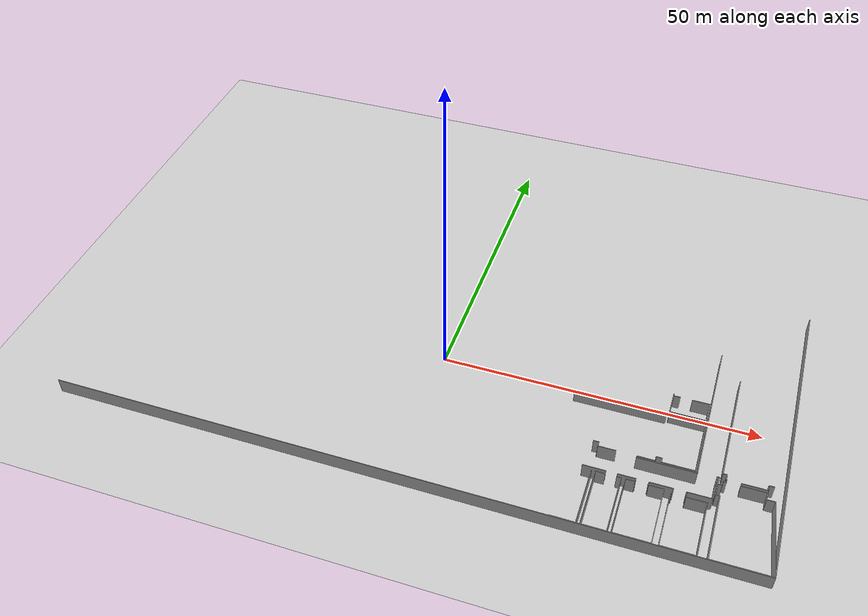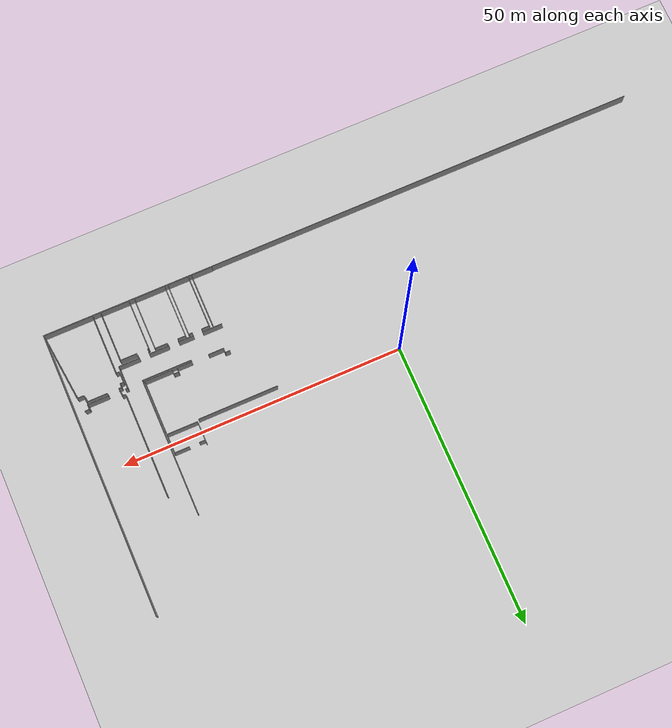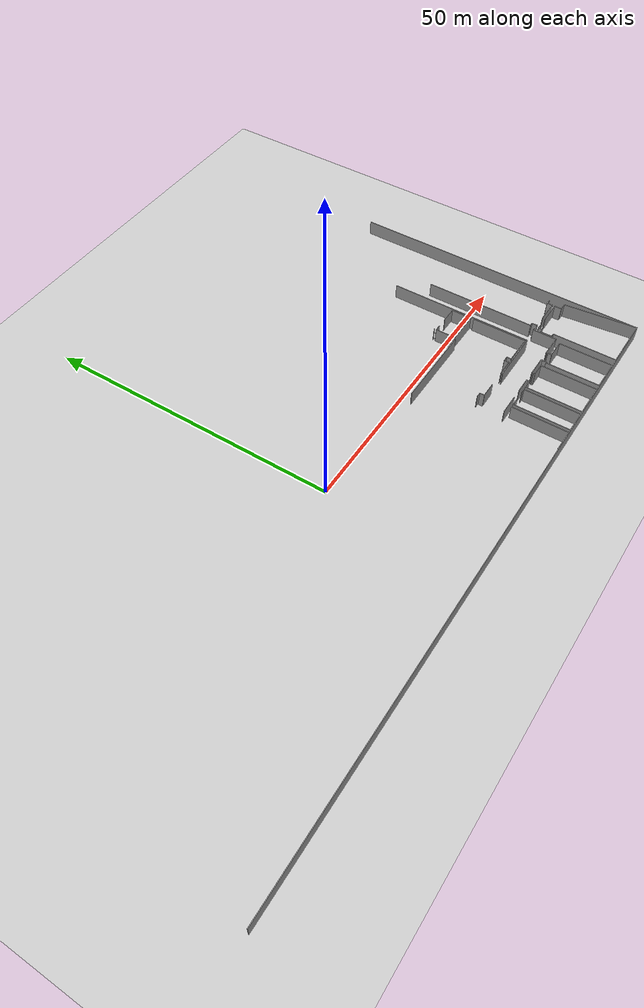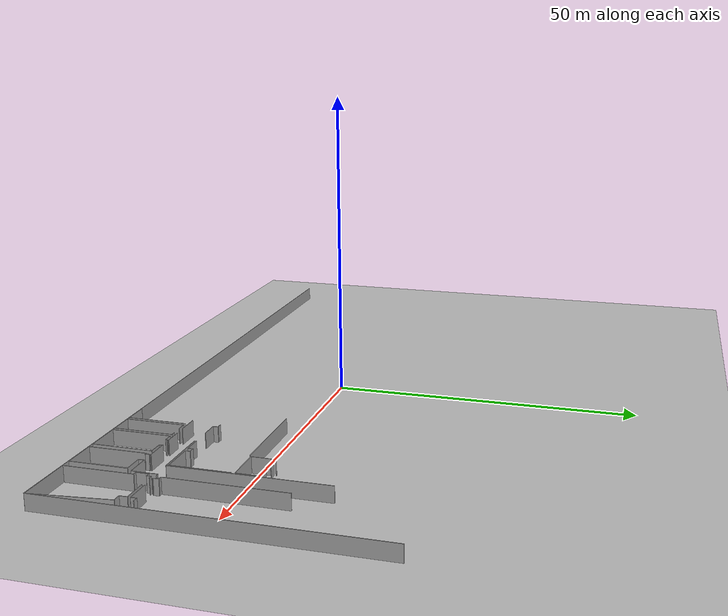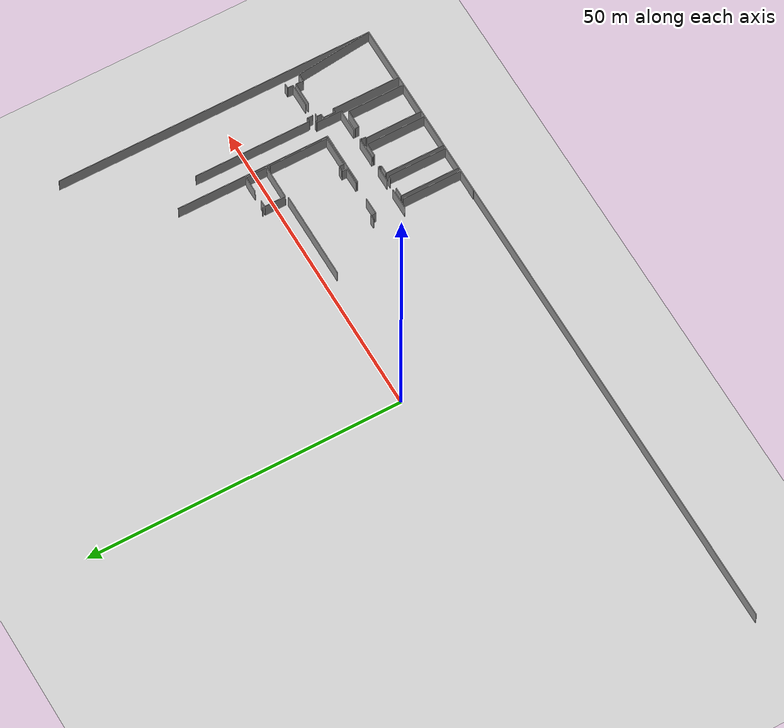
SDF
<sdf version="1.6">
 <world name="default">
  <model name="ground_plane">
   <static>1</static>
   <link name="link">
    <collision name="collision">
     <geometry><plane><normal>0 0 1</normal><size>100 100</size></plane></geometry>
     <surface><friction><ode><mu>100</mu><mu2>50</mu2></ode></friction></surface>
    </collision>
    <visual name="visual">
     <cast_shadows>0</cast_shadows>
     <geometry><plane><normal>0 0 1</normal><size>100 100</size></plane></geometry>
     <material>
      <script><uri>file://media/materials/scripts/gazebo.material</uri><name>Gazebo/Grey</name></script>
     </material>
    </visual>
   </link>
  </model>
  <model name="50045366">
   <static>1</static>
   <link name="Wall_234">
    <collision name="Wall_234_Collision">
     <geometry><box><size>8.78370654507 0.1 2.5</size></box></geometry>
     <pose>4.39185327254 0 1.25 0 0 0</pose>
    </collision>
    <visual name="Wall_234_Visual">
     <pose>4.39185327254 0 1.25 0 0 0</pose>
     <geometry><box><size>8.78370654507 0.1 2.5</size></box></geometry>
     <material>
      <script><uri>file://media/materials/scripts/gazebo.material</uri><name>Gazebo/Grey</name></script>
      <ambient>1 1 1 1</ambient>
     </material>
    </visual>
    <pose>87.0752308493 -36.9889878193 0 0 0 0.0</pose>
   </link>
   <link name="Wall_235">
    <collision name="Wall_235_Collision">
     <geometry><box><size>24.3527962302 0.1 2.5</size></box></geometry>
     <pose>12.1763981151 0 1.25 0 0 0</pose>
    </collision>
    <visual name="Wall_235_Visual">
     <pose>12.1763981151 0 1.25 0 0 0</pose>
     <geometry><box><size>24.3527962302 0.1 2.5</size></box></geometry>
     <material>
      <script><uri>file://media/materials/scripts/gazebo.material</uri><name>Gazebo/Grey</name></script>
      <ambient>1 1 1 1</ambient>
     </material>
    </visual>
    <pose>95.8589373944 -36.9889878193 0 0 0 1.57079632679</pose>
   </link>
   <link name="Wall_241">
    <collision name="Wall_241_Collision">
     <geometry><box><size>0.410003683428 0.1 2.5</size></box></geometry>
     <pose>0.205001841714 0 1.25 0 0 0</pose>
    </collision>
    <visual name="Wall_241_Visual">
     <pose>0.205001841714 0 1.25 0 0 0</pose>
     <geometry><box><size>0.410003683428 0.1 2.5</size></box></geometry>
     <material>
      <script><uri>file://media/materials/scripts/gazebo.material</uri><name>Gazebo/Grey</name></script>
      <ambient>1 1 1 1</ambient>
     </material>
    </visual>
    <pose>99.0200810354 -36.7453734869 0 0 0 3.14159265359</pose>
   </link>
   <link name="Wall_242">
    <collision name="Wall_242_Collision">
     <geometry><box><size>4.01684215874 0.1 2.5</size></box></geometry>
     <pose>2.00842107937 0 1.25 0 0 0</pose>
    </collision>
    <visual name="Wall_242_Visual">
     <pose>2.00842107937 0 1.25 0 0 0</pose>
     <geometry><box><size>4.01684215874 0.1 2.5</size></box></geometry>
     <material>
      <script><uri>file://media/materials/scripts/gazebo.material</uri><name>Gazebo/Grey</name></script>
      <ambient>1 1 1 1</ambient>
     </material>
    </visual>
    <pose>98.610077352 -36.7453734869 0 0 0 -1.57079632679</pose>
   </link>
   <link name="Wall_243">
    <collision name="Wall_243_Collision">
     <geometry><box><size>3.69485971218 0.1 2.5</size></box></geometry>
     <pose>1.84742985609 0 1.25 0 0 0</pose>
    </collision>
    <visual name="Wall_243_Visual">
     <pose>1.84742985609 0 1.25 0 0 0</pose>
     <geometry><box><size>3.69485971218 0.1 2.5</size></box></geometry>
     <material>
      <script><uri>file://media/materials/scripts/gazebo.material</uri><name>Gazebo/Grey</name></script>
      <ambient>1 1 1 1</ambient>
     </material>
    </visual>
    <pose>98.610077352 -40.7622156457 0 0 0 3.14159265359</pose>
   </link>
   <link name="Wall_244">
    <collision name="Wall_244_Collision">
     <geometry><box><size>3.50560770218 0.1 2.5</size></box></geometry>
     <pose>1.75280385109 0 1.25 0 0 0</pose>
    </collision>
    <visual name="Wall_244_Visual">
     <pose>1.75280385109 0 1.25 0 0 0</pose>
     <geometry><box><size>3.50560770218 0.1 2.5</size></box></geometry>
     <material>
      <script><uri>file://media/materials/scripts/gazebo.material</uri><name>Gazebo/Grey</name></script>
      <ambient>1 1 1 1</ambient>
     </material>
    </visual>
    <pose>93.1338354651 -40.7622156457 0 0 0 3.14159265359</pose>
   </link>
   <link name="Wall_245">
    <collision name="Wall_245_Collision">
     <geometry><box><size>2.70541463972 0.1 2.5</size></box></geometry>
     <pose>1.35270731986 0 1.25 0 0 0</pose>
    </collision>
    <visual name="Wall_245_Visual">
     <pose>1.35270731986 0 1.25 0 0 0</pose>
     <geometry><box><size>2.70541463972 0.1 2.5</size></box></geometry>
     <material>
      <script><uri>file://media/materials/scripts/gazebo.material</uri><name>Gazebo/Grey</name></script>
      <ambient>1 1 1 1</ambient>
     </material>
    </visual>
    <pose>87.8500209574 -40.7622156457 0 0 0 3.14159265359</pose>
   </link>
   <link name="Wall_246">
    <collision name="Wall_246_Collision">
     <geometry><box><size>3.48541235346 0.1 2.5</size></box></geometry>
     <pose>1.74270617673 0 1.25 0 0 0</pose>
    </collision>
    <visual name="Wall_246_Visual">
     <pose>1.74270617673 0 1.25 0 0 0</pose>
     <geometry><box><size>3.48541235346 0.1 2.5</size></box></geometry>
     <material>
      <script><uri>file://media/materials/scripts/gazebo.material</uri><name>Gazebo/Grey</name></script>
      <ambient>1 1 1 1</ambient>
     </material>
    </visual>
    <pose>83.5176741055 -40.7622156457 0 0 0 3.14159265359</pose>
   </link>
   <link name="Wall_339">
    <collision name="Wall_339_Collision">
     <geometry><box><size>9.46463273679 0.1 2.5</size></box></geometry>
     <pose>4.73231636839 0 1.25 0 0 0</pose>
    </collision>
    <visual name="Wall_339_Visual">
     <pose>4.73231636839 0 1.25 0 0 0</pose>
     <geometry><box><size>9.46463273679 0.1 2.5</size></box></geometry>
     <material>
      <script><uri>file://media/materials/scripts/gazebo.material</uri><name>Gazebo/Grey</name></script>
      <ambient>1 1 1 1</ambient>
     </material>
    </visual>
    <pose>81.4811192542 -41.2397911877 0 0 0 -1.57079632679</pose>
   </link>
   <link name="Wall_340">
    <collision name="Wall_340_Collision">
     <geometry><box><size>3.73577629962 0.1 2.5</size></box></geometry>
     <pose>1.86788814981 0 1.25 0 0 0</pose>
    </collision>
    <visual name="Wall_340_Visual">
     <pose>1.86788814981 0 1.25 0 0 0</pose>
     <geometry><box><size>3.73577629962 0.1 2.5</size></box></geometry>
     <material>
      <script><uri>file://media/materials/scripts/gazebo.material</uri><name>Gazebo/Grey</name></script>
      <ambient>1 1 1 1</ambient>
     </material>
    </visual>
    <pose>81.4811192542 -50.7044239245 0 0 0 3.13278665226</pose>
   </link>
   <link name="Wall_341">
    <collision name="Wall_341_Collision">
     <geometry><box><size>9.42373398026 0.1 2.5</size></box></geometry>
     <pose>4.71186699013 0 1.25 0 0 0</pose>
    </collision>
    <visual name="Wall_341_Visual">
     <pose>4.71186699013 0 1.25 0 0 0</pose>
     <geometry><box><size>9.42373398026 0.1 2.5</size></box></geometry>
     <material>
      <script><uri>file://media/materials/scripts/gazebo.material</uri><name>Gazebo/Grey</name></script>
      <ambient>1 1 1 1</ambient>
     </material>
    </visual>
    <pose>82.0553530376 -50.696930053 0 0 0 1.57079632679</pose>
   </link>
   <link name="Wall_342">
    <collision name="Wall_342_Collision">
     <geometry><box><size>1.44352288171 0.1 2.5</size></box></geometry>
     <pose>0.721761440856 0 1.25 0 0 0</pose>
    </collision>
    <visual name="Wall_342_Visual">
     <pose>0.721761440856 0 1.25 0 0 0</pose>
     <geometry><box><size>1.44352288171 0.1 2.5</size></box></geometry>
     <material>
      <script><uri>file://media/materials/scripts/gazebo.material</uri><name>Gazebo/Grey</name></script>
      <ambient>1 1 1 1</ambient>
     </material>
    </visual>
    <pose>82.0553530376 -41.2731960727 0 0 0 0.0</pose>
   </link>
   <link name="Wall_343">
    <collision name="Wall_343_Collision">
     <geometry><box><size>0.672289187232 0.1 2.5</size></box></geometry>
     <pose>0.336144593616 0 1.25 0 0 0</pose>
    </collision>
    <visual name="Wall_343_Visual">
     <pose>0.336144593616 0 1.25 0 0 0</pose>
     <geometry><box><size>0.672289187232 0.1 2.5</size></box></geometry>
     <material>
      <script><uri>file://media/materials/scripts/gazebo.material</uri><name>Gazebo/Grey</name></script>
      <ambient>1 1 1 1</ambient>
     </material>
    </visual>
    <pose>85.1214896292 -41.2731960727 0 0 0 0.0</pose>
   </link>
   <link name="Wall_344">
    <collision name="Wall_344_Collision">
     <geometry><box><size>9.4271633791 0.1 2.5</size></box></geometry>
     <pose>4.71358168955 0 1.25 0 0 0</pose>
    </collision>
    <visual name="Wall_344_Visual">
     <pose>4.71358168955 0 1.25 0 0 0</pose>
     <geometry><box><size>9.4271633791 0.1 2.5</size></box></geometry>
     <material>
      <script><uri>file://media/materials/scripts/gazebo.material</uri><name>Gazebo/Grey</name></script>
      <ambient>1 1 1 1</ambient>
     </material>
    </visual>
    <pose>85.7937788165 -41.2731960727 0 0 0 -1.57079632679</pose>
   </link>
   <link name="Wall_345">
    <collision name="Wall_345_Collision">
     <geometry><box><size>3.73842735188 0.1 2.5</size></box></geometry>
     <pose>1.86921367594 0 1.25 0 0 0</pose>
    </collision>
    <visual name="Wall_345_Visual">
     <pose>1.86921367594 0 1.25 0 0 0</pose>
     <geometry><box><size>3.73842735188 0.1 2.5</size></box></geometry>
     <material>
      <script><uri>file://media/materials/scripts/gazebo.material</uri><name>Gazebo/Grey</name></script>
      <ambient>1 1 1 1</ambient>
     </material>
    </visual>
    <pose>85.7937788165 -50.7003594518 0 0 0 3.14067531616</pose>
   </link>
   <link name="Wall_346">
    <collision name="Wall_346_Collision">
     <geometry><box><size>9.43224396997 0.1 2.5</size></box></geometry>
     <pose>4.71612198499 0 1.25 0 0 0</pose>
    </collision>
    <visual name="Wall_346_Visual">
     <pose>4.71612198499 0 1.25 0 0 0</pose>
     <geometry><box><size>9.43224396997 0.1 2.5</size></box></geometry>
     <material>
      <script><uri>file://media/materials/scripts/gazebo.material</uri><name>Gazebo/Grey</name></script>
      <ambient>1 1 1 1</ambient>
     </material>
    </visual>
    <pose>86.3700448362 -50.6907063291 0 0 0 1.57079632679</pose>
   </link>
   <link name="Wall_347">
    <collision name="Wall_347_Collision">
     <geometry><box><size>1.40249711041 0.1 2.5</size></box></geometry>
     <pose>0.701248555207 0 1.25 0 0 0</pose>
    </collision>
    <visual name="Wall_347_Visual">
     <pose>0.701248555207 0 1.25 0 0 0</pose>
     <geometry><box><size>1.40249711041 0.1 2.5</size></box></geometry>
     <material>
      <script><uri>file://media/materials/scripts/gazebo.material</uri><name>Gazebo/Grey</name></script>
      <ambient>1 1 1 1</ambient>
     </material>
    </visual>
    <pose>86.3700448362 -41.2584623592 0 0 0 0.0</pose>
   </link>
   <link name="Wall_348">
    <collision name="Wall_348_Collision">
     <geometry><box><size>0.258094016334 0.1 2.5</size></box></geometry>
     <pose>0.129047008167 0 1.25 0 0 0</pose>
    </collision>
    <visual name="Wall_348_Visual">
     <pose>0.129047008167 0 1.25 0 0 0</pose>
     <geometry><box><size>0.258094016334 0.1 2.5</size></box></geometry>
     <material>
      <script><uri>file://media/materials/scripts/gazebo.material</uri><name>Gazebo/Grey</name></script>
      <ambient>1 1 1 1</ambient>
     </material>
    </visual>
    <pose>87.7725419466 -41.2584623592 0 0 0 1.57079632679</pose>
   </link>
   <link name="Wall_349">
    <collision name="Wall_349_Collision">
     <geometry><box><size>0.0933558572862 0.1 2.5</size></box></geometry>
     <pose>0.0466779286431 0 1.25 0 0 0</pose>
    </collision>
    <visual name="Wall_349_Visual">
     <pose>0.0466779286431 0 1.25 0 0 0</pose>
     <geometry><box><size>0.0933558572862 0.1 2.5</size></box></geometry>
     <material>
      <script><uri>file://media/materials/scripts/gazebo.material</uri><name>Gazebo/Grey</name></script>
      <ambient>1 1 1 1</ambient>
     </material>
    </visual>
    <pose>87.7725419466 -41.0003683428 0 0 0 0.0</pose>
   </link>
   <link name="Wall_350">
    <collision name="Wall_350_Collision">
     <geometry><box><size>0.126379697959 0.1 2.5</size></box></geometry>
     <pose>0.0631898489794 0 1.25 0 0 0</pose>
    </collision>
    <visual name="Wall_350_Visual">
     <pose>0.0631898489794 0 1.25 0 0 0</pose>
     <geometry><box><size>0.126379697959 0.1 2.5</size></box></geometry>
     <material>
      <script><uri>file://media/materials/scripts/gazebo.material</uri><name>Gazebo/Grey</name></script>
      <ambient>1 1 1 1</ambient>
     </material>
    </visual>
    <pose>89.5875830359 -41.0003683428 0 0 0 0.0</pose>
   </link>
   <link name="Wall_351">
    <collision name="Wall_351_Collision">
     <geometry><box><size>0.263301621979 0.1 2.5</size></box></geometry>
     <pose>0.131650810989 0 1.25 0 0 0</pose>
    </collision>
    <visual name="Wall_351_Visual">
     <pose>0.131650810989 0 1.25 0 0 0</pose>
     <geometry><box><size>0.263301621979 0.1 2.5</size></box></geometry>
     <material>
      <script><uri>file://media/materials/scripts/gazebo.material</uri><name>Gazebo/Grey</name></script>
      <ambient>1 1 1 1</ambient>
     </material>
    </visual>
    <pose>89.7139627339 -41.0003683428 0 0 0 -1.57079632679</pose>
   </link>
   <link name="Wall_352">
    <collision name="Wall_352_Collision">
     <geometry><box><size>2.18490810481 0.1 2.5</size></box></geometry>
     <pose>1.09245405241 0 1.25 0 0 0</pose>
    </collision>
    <visual name="Wall_352_Visual">
     <pose>1.09245405241 0 1.25 0 0 0</pose>
     <geometry><box><size>2.18490810481 0.1 2.5</size></box></geometry>
     <material>
      <script><uri>file://media/materials/scripts/gazebo.material</uri><name>Gazebo/Grey</name></script>
      <ambient>1 1 1 1</ambient>
     </material>
    </visual>
    <pose>89.7139627339 -41.2636699648 0 0 0 0.0</pose>
   </link>
   <link name="Wall_353">
    <collision name="Wall_353_Collision">
     <geometry><box><size>9.4230989064 0.1 2.5</size></box></geometry>
     <pose>4.7115494532 0 1.25 0 0 0</pose>
    </collision>
    <visual name="Wall_353_Visual">
     <pose>4.7115494532 0 1.25 0 0 0</pose>
     <geometry><box><size>9.4230989064 0.1 2.5</size></box></geometry>
     <material>
      <script><uri>file://media/materials/scripts/gazebo.material</uri><name>Gazebo/Grey</name></script>
      <ambient>1 1 1 1</ambient>
     </material>
    </visual>
    <pose>91.8988708387 -41.2636699648 0 0 0 -1.57079632679</pose>
   </link>
   <link name="Wall_354">
    <collision name="Wall_354_Collision">
     <geometry><box><size>5.52882740453 0.1 2.5</size></box></geometry>
     <pose>2.76441370227 0 1.25 0 0 0</pose>
    </collision>
    <visual name="Wall_354_Visual">
     <pose>2.76441370227 0 1.25 0 0 0</pose>
     <geometry><box><size>5.52882740453 0.1 2.5</size></box></geometry>
     <material>
      <script><uri>file://media/materials/scripts/gazebo.material</uri><name>Gazebo/Grey</name></script>
      <ambient>1 1 1 1</ambient>
     </material>
    </visual>
    <pose>91.8988708387 -50.6867688712 0 0 0 -3.14088048481</pose>
   </link>
   <link name="Wall_355">
    <collision name="Wall_355_Collision">
     <geometry><box><size>9.00674448438 0.1 2.5</size></box></geometry>
     <pose>4.50337224219 0 1.25 0 0 0</pose>
    </collision>
    <visual name="Wall_355_Visual">
     <pose>4.50337224219 0 1.25 0 0 0</pose>
     <geometry><box><size>9.00674448438 0.1 2.5</size></box></geometry>
     <material>
      <script><uri>file://media/materials/scripts/gazebo.material</uri><name>Gazebo/Grey</name></script>
      <ambient>1 1 1 1</ambient>
     </material>
    </visual>
    <pose>92.8682475772 -50.6748294827 0 0 0 1.57079632679</pose>
   </link>
   <link name="Wall_356">
    <collision name="Wall_356_Collision">
     <geometry><box><size>0.175788444196 0.1 2.5</size></box></geometry>
     <pose>0.087894222098 0 1.25 0 0 0</pose>
    </collision>
    <visual name="Wall_356_Visual">
     <pose>0.087894222098 0 1.25 0 0 0</pose>
     <geometry><box><size>0.175788444196 0.1 2.5</size></box></geometry>
     <material>
      <script><uri>file://media/materials/scripts/gazebo.material</uri><name>Gazebo/Grey</name></script>
      <ambient>1 1 1 1</ambient>
     </material>
    </visual>
    <pose>92.8682475772 -41.6680849983 0 0 0 0.0</pose>
   </link>
   <link name="Wall_357">
    <collision name="Wall_357_Collision">
     <geometry><box><size>0.682831413293 0.1 2.5</size></box></geometry>
     <pose>0.341415706647 0 1.25 0 0 0</pose>
    </collision>
    <visual name="Wall_357_Visual">
     <pose>0.341415706647 0 1.25 0 0 0</pose>
     <geometry><box><size>0.682831413293 0.1 2.5</size></box></geometry>
     <material>
      <script><uri>file://media/materials/scripts/gazebo.material</uri><name>Gazebo/Grey</name></script>
      <ambient>1 1 1 1</ambient>
     </material>
    </visual>
    <pose>93.0440360214 -41.6680849983 0 0 0 1.57079632679</pose>
   </link>
   <link name="Wall_358">
    <collision name="Wall_358_Collision">
     <geometry><box><size>0.119393885509 0.1 2.5</size></box></geometry>
     <pose>0.0596969427544 0 1.25 0 0 0</pose>
    </collision>
    <visual name="Wall_358_Visual">
     <pose>0.0596969427544 0 1.25 0 0 0</pose>
     <geometry><box><size>0.119393885509 0.1 2.5</size></box></geometry>
     <material>
      <script><uri>file://media/materials/scripts/gazebo.material</uri><name>Gazebo/Grey</name></script>
      <ambient>1 1 1 1</ambient>
     </material>
    </visual>
    <pose>93.0440360214 -40.985253585 0 0 0 0.0</pose>
   </link>
   <link name="Wall_359">
    <collision name="Wall_359_Collision">
     <geometry><box><size>0.116218516213 0.1 2.5</size></box></geometry>
     <pose>0.0581092581067 0 1.25 0 0 0</pose>
    </collision>
    <visual name="Wall_359_Visual">
     <pose>0.0581092581067 0 1.25 0 0 0</pose>
     <geometry><box><size>0.116218516213 0.1 2.5</size></box></geometry>
     <material>
      <script><uri>file://media/materials/scripts/gazebo.material</uri><name>Gazebo/Grey</name></script>
      <ambient>1 1 1 1</ambient>
     </material>
    </visual>
    <pose>94.8978166161 -40.985253585 0 0 0 0.0</pose>
   </link>
   <link name="Wall_360">
    <collision name="Wall_360_Collision">
     <geometry><box><size>0.674321423582 0.1 2.5</size></box></geometry>
     <pose>0.337160711791 0 1.25 0 0 0</pose>
    </collision>
    <visual name="Wall_360_Visual">
     <pose>0.337160711791 0 1.25 0 0 0</pose>
     <geometry><box><size>0.674321423582 0.1 2.5</size></box></geometry>
     <material>
      <script><uri>file://media/materials/scripts/gazebo.material</uri><name>Gazebo/Grey</name></script>
      <ambient>1 1 1 1</ambient>
     </material>
    </visual>
    <pose>95.0140351323 -40.985253585 0 0 0 -1.57079632679</pose>
   </link>
   <link name="Wall_361">
    <collision name="Wall_361_Collision">
     <geometry><box><size>2.99195996494 0.1 2.5</size></box></geometry>
     <pose>1.49597998247 0 1.25 0 0 0</pose>
    </collision>
    <visual name="Wall_361_Visual">
     <pose>1.49597998247 0 1.25 0 0 0</pose>
     <geometry><box><size>2.99195996494 0.1 2.5</size></box></geometry>
     <material>
      <script><uri>file://media/materials/scripts/gazebo.material</uri><name>Gazebo/Grey</name></script>
      <ambient>1 1 1 1</ambient>
     </material>
    </visual>
    <pose>95.0140351323 -41.6595750086 0 0 0 0.0</pose>
   </link>
   <link name="Wall_362">
    <collision name="Wall_362_Collision">
     <geometry><box><size>9.03113132057 0.1 2.5</size></box></geometry>
     <pose>4.51556566029 0 1.25 0 0 0</pose>
    </collision>
    <visual name="Wall_362_Visual">
     <pose>4.51556566029 0 1.25 0 0 0</pose>
     <geometry><box><size>9.03113132057 0.1 2.5</size></box></geometry>
     <material>
      <script><uri>file://media/materials/scripts/gazebo.material</uri><name>Gazebo/Grey</name></script>
      <ambient>1 1 1 1</ambient>
     </material>
    </visual>
    <pose>98.0059950972 -41.6595750086 0 0 0 -1.57079632679</pose>
   </link>
   <link name="Wall_363">
    <collision name="Wall_363_Collision">
     <geometry><box><size>5.13777205157 0.1 2.5</size></box></geometry>
     <pose>2.56888602579 0 1.25 0 0 0</pose>
    </collision>
    <visual name="Wall_363_Visual">
     <pose>2.56888602579 0 1.25 0 0 0</pose>
     <geometry><box><size>5.13777205157 0.1 2.5</size></box></geometry>
     <material>
      <script><uri>file://media/materials/scripts/gazebo.material</uri><name>Gazebo/Grey</name></script>
      <ambient>1 1 1 1</ambient>
     </material>
    </visual>
    <pose>98.0059950972 -50.6907063291 0 0 0 3.13850242857</pose>
   </link>
   <link name="Wall_366">
    <collision name="Wall_366_Collision">
     <geometry><box><size>9.25721761441 0.1 2.5</size></box></geometry>
     <pose>4.6286088072 0 1.25 0 0 0</pose>
    </collision>
    <visual name="Wall_366_Visual">
     <pose>4.6286088072 0 1.25 0 0 0</pose>
     <geometry><box><size>9.25721761441 0.1 2.5</size></box></geometry>
     <material>
      <script><uri>file://media/materials/scripts/gazebo.material</uri><name>Gazebo/Grey</name></script>
      <ambient>1 1 1 1</ambient>
     </material>
    </visual>
    <pose>95.6183714166 -27.4477651751 0 0 0 -1.57079632679</pose>
   </link>
   <link name="Wall_367">
    <collision name="Wall_367_Collision">
     <geometry><box><size>4.9707230951 0.1 2.5</size></box></geometry>
     <pose>2.48536154755 0 1.25 0 0 0</pose>
    </collision>
    <visual name="Wall_367_Visual">
     <pose>2.48536154755 0 1.25 0 0 0</pose>
     <geometry><box><size>4.9707230951 0.1 2.5</size></box></geometry>
     <material>
      <script><uri>file://media/materials/scripts/gazebo.material</uri><name>Gazebo/Grey</name></script>
      <ambient>1 1 1 1</ambient>
     </material>
    </visual>
    <pose>95.6183714166 -36.7049827895 0 0 0 3.14159265359</pose>
   </link>
   <link name="Wall_368">
    <collision name="Wall_368_Collision">
     <geometry><box><size>0.759929379787 0.1 2.5</size></box></geometry>
     <pose>0.379964689893 0 1.25 0 0 0</pose>
    </collision>
    <visual name="Wall_368_Visual">
     <pose>0.379964689893 0 1.25 0 0 0</pose>
     <geometry><box><size>0.759929379787 0.1 2.5</size></box></geometry>
     <material>
      <script><uri>file://media/materials/scripts/gazebo.material</uri><name>Gazebo/Grey</name></script>
      <ambient>1 1 1 1</ambient>
     </material>
    </visual>
    <pose>90.6476483215 -36.7049827895 0 0 0 1.57079632679</pose>
   </link>
   <link name="Wall_369">
    <collision name="Wall_369_Collision">
     <geometry><box><size>0.876909984631 0.1 2.5</size></box></geometry>
     <pose>0.438454992316 0 1.25 0 0 0</pose>
    </collision>
    <visual name="Wall_369_Visual">
     <pose>0.438454992316 0 1.25 0 0 0</pose>
     <geometry><box><size>0.876909984631 0.1 2.5</size></box></geometry>
     <material>
      <script><uri>file://media/materials/scripts/gazebo.material</uri><name>Gazebo/Grey</name></script>
      <ambient>1 1 1 1</ambient>
     </material>
    </visual>
    <pose>90.6476483215 -35.9450534097 0 0 0 3.14159265359</pose>
   </link>
   <link name="Wall_370">
    <collision name="Wall_370_Collision">
     <geometry><box><size>0.776695329667 0.1 2.5</size></box></geometry>
     <pose>0.388347664833 0 1.25 0 0 0</pose>
    </collision>
    <visual name="Wall_370_Visual">
     <pose>0.388347664833 0 1.25 0 0 0</pose>
     <geometry><box><size>0.776695329667 0.1 2.5</size></box></geometry>
     <material>
      <script><uri>file://media/materials/scripts/gazebo.material</uri><name>Gazebo/Grey</name></script>
      <ambient>1 1 1 1</ambient>
     </material>
    </visual>
    <pose>89.7707383369 -35.9450534097 0 0 0 -1.57079632679</pose>
   </link>
   <link name="Wall_371">
    <collision name="Wall_371_Collision">
     <geometry><box><size>2.68077377399 0.1 2.5</size></box></geometry>
     <pose>1.34038688699 0 1.25 0 0 0</pose>
    </collision>
    <visual name="Wall_371_Visual">
     <pose>1.34038688699 0 1.25 0 0 0</pose>
     <geometry><box><size>2.68077377399 0.1 2.5</size></box></geometry>
     <material>
      <script><uri>file://media/materials/scripts/gazebo.material</uri><name>Gazebo/Grey</name></script>
      <ambient>1 1 1 1</ambient>
     </material>
    </visual>
    <pose>89.7707383369 -36.7217487394 0 0 0 3.14159265359</pose>
   </link>
   <link name="Wall_372">
    <collision name="Wall_372_Collision">
     <geometry><box><size>2.71798910213 0.1 2.5</size></box></geometry>
     <pose>1.35899455107 0 1.25 0 0 0</pose>
    </collision>
    <visual name="Wall_372_Visual">
     <pose>1.35899455107 0 1.25 0 0 0</pose>
     <geometry><box><size>2.71798910213 0.1 2.5</size></box></geometry>
     <material>
      <script><uri>file://media/materials/scripts/gazebo.material</uri><name>Gazebo/Grey</name></script>
      <ambient>1 1 1 1</ambient>
     </material>
    </visual>
    <pose>84.1034662331 -36.7217487394 0 0 0 3.14159265359</pose>
   </link>
   <link name="Wall_373">
    <collision name="Wall_373_Collision">
     <geometry><box><size>0.783046068258 0.1 2.5</size></box></geometry>
     <pose>0.391523034129 0 1.25 0 0 0</pose>
    </collision>
    <visual name="Wall_373_Visual">
     <pose>0.391523034129 0 1.25 0 0 0</pose>
     <geometry><box><size>0.783046068258 0.1 2.5</size></box></geometry>
     <material>
      <script><uri>file://media/materials/scripts/gazebo.material</uri><name>Gazebo/Grey</name></script>
      <ambient>1 1 1 1</ambient>
     </material>
    </visual>
    <pose>81.385477131 -36.7217487394 0 0 0 1.57079632679</pose>
   </link>
   <link name="Wall_374">
    <collision name="Wall_374_Collision">
     <geometry><box><size>0.845156291677 0.1 2.5</size></box></geometry>
     <pose>0.422578145838 0 1.25 0 0 0</pose>
    </collision>
    <visual name="Wall_374_Visual">
     <pose>0.422578145838 0 1.25 0 0 0</pose>
     <geometry><box><size>0.845156291677 0.1 2.5</size></box></geometry>
     <material>
      <script><uri>file://media/materials/scripts/gazebo.material</uri><name>Gazebo/Grey</name></script>
      <ambient>1 1 1 1</ambient>
     </material>
    </visual>
    <pose>81.385477131 -35.9387026711 0 0 0 3.14159265359</pose>
   </link>
   <link name="Wall_394">
    <collision name="Wall_394_Collision">
     <geometry><box><size>0.864335522221 0.1 2.5</size></box></geometry>
     <pose>0.432167761111 0 1.25 0 0 0</pose>
    </collision>
    <visual name="Wall_394_Visual">
     <pose>0.432167761111 0 1.25 0 0 0</pose>
     <geometry><box><size>0.864335522221 0.1 2.5</size></box></geometry>
     <material>
      <script><uri>file://media/materials/scripts/gazebo.material</uri><name>Gazebo/Grey</name></script>
      <ambient>1 1 1 1</ambient>
     </material>
    </visual>
    <pose>99.9023256405 -36.7935120855 0 0 0 1.57079632679</pose>
   </link>
   <link name="Wall_395">
    <collision name="Wall_395_Collision">
     <geometry><box><size>0.576266019738 0.1 2.5</size></box></geometry>
     <pose>0.288133009869 0 1.25 0 0 0</pose>
    </collision>
    <visual name="Wall_395_Visual">
     <pose>0.288133009869 0 1.25 0 0 0</pose>
     <geometry><box><size>0.576266019738 0.1 2.5</size></box></geometry>
     <material>
      <script><uri>file://media/materials/scripts/gazebo.material</uri><name>Gazebo/Grey</name></script>
      <ambient>1 1 1 1</ambient>
     </material>
    </visual>
    <pose>99.9023256405 -35.9291765632 0 0 0 3.14159265359</pose>
   </link>
   <link name="Wall_396">
    <collision name="Wall_396_Collision">
     <geometry><box><size>18.5674003887 0.1 2.5</size></box></geometry>
     <pose>9.28370019433 0 1.25 0 0 0</pose>
    </collision>
    <visual name="Wall_396_Visual">
     <pose>9.28370019433 0 1.25 0 0 0</pose>
     <geometry><box><size>18.5674003887 0.1 2.5</size></box></geometry>
     <material>
      <script><uri>file://media/materials/scripts/gazebo.material</uri><name>Gazebo/Grey</name></script>
      <ambient>1 1 1 1</ambient>
     </material>
    </visual>
    <pose>99.3260596207 -35.9291765632 0 0 0 1.57079632679</pose>
   </link>
   <link name="Wall_401">
    <collision name="Wall_401_Collision">
     <geometry><box><size>0.806543801044 0.1 2.5</size></box></geometry>
     <pose>0.403271900522 0 1.25 0 0 0</pose>
    </collision>
    <visual name="Wall_401_Visual">
     <pose>0.403271900522 0 1.25 0 0 0</pose>
     <geometry><box><size>0.806543801044 0.1 2.5</size></box></geometry>
     <material>
      <script><uri>file://media/materials/scripts/gazebo.material</uri><name>Gazebo/Grey</name></script>
      <ambient>1 1 1 1</ambient>
     </material>
    </visual>
    <pose>106.532623744 -35.9442913211 0 0 0 3.14159265359</pose>
   </link>
   <link name="Wall_402">
    <collision name="Wall_402_Collision">
     <geometry><box><size>0.88592803343 0.1 2.5</size></box></geometry>
     <pose>0.442964016715 0 1.25 0 0 0</pose>
    </collision>
    <visual name="Wall_402_Visual">
     <pose>0.442964016715 0 1.25 0 0 0</pose>
     <geometry><box><size>0.88592803343 0.1 2.5</size></box></geometry>
     <material>
      <script><uri>file://media/materials/scripts/gazebo.material</uri><name>Gazebo/Grey</name></script>
      <ambient>1 1 1 1</ambient>
     </material>
    </visual>
    <pose>105.726079943 -35.9442913211 0 0 0 -1.57079632679</pose>
   </link>
   <link name="Wall_403">
    <collision name="Wall_403_Collision">
     <geometry><box><size>3.73321817327 0.1 2.5</size></box></geometry>
     <pose>1.86660908664 0 1.25 0 0 0</pose>
    </collision>
    <visual name="Wall_403_Visual">
     <pose>1.86660908664 0 1.25 0 0 0</pose>
     <geometry><box><size>3.73321817327 0.1 2.5</size></box></geometry>
     <material>
      <script><uri>file://media/materials/scripts/gazebo.material</uri><name>Gazebo/Grey</name></script>
      <ambient>1 1 1 1</ambient>
     </material>
    </visual>
    <pose>105.726079943 -36.8302193545 0 0 0 3.14159265359</pose>
   </link>
   <link name="Wall_404">
    <collision name="Wall_404_Collision">
     <geometry><box><size>0.12916509288 0.1 2.5</size></box></geometry>
     <pose>0.0645825464399 0 1.25 0 0 0</pose>
    </collision>
    <visual name="Wall_404_Visual">
     <pose>0.0645825464399 0 1.25 0 0 0</pose>
     <geometry><box><size>0.12916509288 0.1 2.5</size></box></geometry>
     <material>
      <script><uri>file://media/materials/scripts/gazebo.material</uri><name>Gazebo/Grey</name></script>
      <ambient>1 1 1 1</ambient>
     </material>
    </visual>
    <pose>100.026165043 -36.8302193545 0 0 0 2.85343244696</pose>
   </link>
   <link name="Wall_405">
    <collision name="Wall_405_Collision">
     <geometry><box><size>10.796001575 0.1 2.5</size></box></geometry>
     <pose>5.39800078749 0 1.25 0 0 0</pose>
    </collision>
    <visual name="Wall_405_Visual">
     <pose>5.39800078749 0 1.25 0 0 0</pose>
     <geometry><box><size>10.796001575 0.1 2.5</size></box></geometry>
     <material>
      <script><uri>file://media/materials/scripts/gazebo.material</uri><name>Gazebo/Grey</name></script>
      <ambient>1 1 1 1</ambient>
     </material>
    </visual>
    <pose>99.4619654266 -50.7079803381 0 0 0 1.57079632679</pose>
   </link>
   <link name="Wall_406">
    <collision name="Wall_406_Collision">
     <geometry><box><size>0.613227318337 0.1 2.5</size></box></geometry>
     <pose>0.306613659169 0 1.25 0 0 0</pose>
    </collision>
    <visual name="Wall_406_Visual">
     <pose>0.306613659169 0 1.25 0 0 0</pose>
     <geometry><box><size>0.613227318337 0.1 2.5</size></box></geometry>
     <material>
      <script><uri>file://media/materials/scripts/gazebo.material</uri><name>Gazebo/Grey</name></script>
      <ambient>1 1 1 1</ambient>
     </material>
    </visual>
    <pose>99.4619654266 -39.9119787631 0 0 0 3.14159265359</pose>
   </link>
   <link name="Wall_407">
    <collision name="Wall_407_Collision">
     <geometry><box><size>1.93761034408 0.1 2.5</size></box></geometry>
     <pose>0.968805172042 0 1.25 0 0 0</pose>
    </collision>
    <visual name="Wall_407_Visual">
     <pose>0.968805172042 0 1.25 0 0 0</pose>
     <geometry><box><size>1.93761034408 0.1 2.5</size></box></geometry>
     <material>
      <script><uri>file://media/materials/scripts/gazebo.material</uri><name>Gazebo/Grey</name></script>
      <ambient>1 1 1 1</ambient>
     </material>
    </visual>
    <pose>98.8487381082 -39.9119787631 0 0 0 1.57079632679</pose>
   </link>
   <link name="Wall_408">
    <collision name="Wall_408_Collision">
     <geometry><box><size>0.626309839834 0.1 2.5</size></box></geometry>
     <pose>0.313154919917 0 1.25 0 0 0</pose>
    </collision>
    <visual name="Wall_408_Visual">
     <pose>0.313154919917 0 1.25 0 0 0</pose>
     <geometry><box><size>0.626309839834 0.1 2.5</size></box></geometry>
     <material>
      <script><uri>file://media/materials/scripts/gazebo.material</uri><name>Gazebo/Grey</name></script>
      <ambient>1 1 1 1</ambient>
     </material>
    </visual>
    <pose>98.8487381082 -37.974368419 0 0 0 0.0</pose>
   </link>
   <link name="Wall_409">
    <collision name="Wall_409_Collision">
     <geometry><box><size>0.701502584751 0.1 2.5</size></box></geometry>
     <pose>0.350751292375 0 1.25 0 0 0</pose>
    </collision>
    <visual name="Wall_409_Visual">
     <pose>0.350751292375 0 1.25 0 0 0</pose>
     <geometry><box><size>0.701502584751 0.1 2.5</size></box></geometry>
     <material>
      <script><uri>file://media/materials/scripts/gazebo.material</uri><name>Gazebo/Grey</name></script>
      <ambient>1 1 1 1</ambient>
     </material>
    </visual>
    <pose>99.4750479481 -37.974368419 0 0 0 1.57079632679</pose>
   </link>
   <link name="Wall_410">
    <collision name="Wall_410_Collision">
     <geometry><box><size>0.526222199642 0.1 2.5</size></box></geometry>
     <pose>0.263111099821 0 1.25 0 0 0</pose>
    </collision>
    <visual name="Wall_410_Visual">
     <pose>0.263111099821 0 1.25 0 0 0</pose>
     <geometry><box><size>0.526222199642 0.1 2.5</size></box></geometry>
     <material>
      <script><uri>file://media/materials/scripts/gazebo.material</uri><name>Gazebo/Grey</name></script>
      <ambient>1 1 1 1</ambient>
     </material>
    </visual>
    <pose>99.4750479481 -37.2728658343 0 0 0 0.0</pose>
   </link>
   <link name="Wall_411">
    <collision name="Wall_411_Collision">
     <geometry><box><size>3.71073655866 0.1 2.5</size></box></geometry>
     <pose>1.85536827933 0 1.25 0 0 0</pose>
    </collision>
    <visual name="Wall_411_Visual">
     <pose>1.85536827933 0 1.25 0 0 0</pose>
     <geometry><box><size>3.71073655866 0.1 2.5</size></box></geometry>
     <material>
      <script><uri>file://media/materials/scripts/gazebo.material</uri><name>Gazebo/Grey</name></script>
      <ambient>1 1 1 1</ambient>
     </material>
    </visual>
    <pose>101.991210578 -37.2728658343 0 0 0 0.0</pose>
   </link>
   <link name="Wall_412">
    <collision name="Wall_412_Collision">
     <geometry><box><size>1.20854555385 0.1 2.5</size></box></geometry>
     <pose>0.604272776924 0 1.25 0 0 0</pose>
    </collision>
    <visual name="Wall_412_Visual">
     <pose>0.604272776924 0 1.25 0 0 0</pose>
     <geometry><box><size>1.20854555385 0.1 2.5</size></box></geometry>
     <material>
      <script><uri>file://media/materials/scripts/gazebo.material</uri><name>Gazebo/Grey</name></script>
      <ambient>1 1 1 1</ambient>
     </material>
    </visual>
    <pose>105.701947136 -37.2728658343 0 0 0 -1.57079632679</pose>
   </link>
   <link name="Wall_413">
    <collision name="Wall_413_Collision">
     <geometry><box><size>1.2155313663 0.1 2.5</size></box></geometry>
     <pose>0.607765683149 0 1.25 0 0 0</pose>
    </collision>
    <visual name="Wall_413_Visual">
     <pose>0.607765683149 0 1.25 0 0 0</pose>
     <geometry><box><size>1.2155313663 0.1 2.5</size></box></geometry>
     <material>
      <script><uri>file://media/materials/scripts/gazebo.material</uri><name>Gazebo/Grey</name></script>
      <ambient>1 1 1 1</ambient>
     </material>
    </visual>
    <pose>105.701947136 -38.4814113881 0 0 0 0.0</pose>
   </link>
   <link name="Wall_414">
    <collision name="Wall_414_Collision">
     <geometry><box><size>12.278510913 0.1 2.5</size></box></geometry>
     <pose>6.1392554565 0 1.25 0 0 0</pose>
    </collision>
    <visual name="Wall_414_Visual">
     <pose>6.1392554565 0 1.25 0 0 0</pose>
     <geometry><box><size>12.278510913 0.1 2.5</size></box></geometry>
     <material>
      <script><uri>file://media/materials/scripts/gazebo.material</uri><name>Gazebo/Grey</name></script>
      <ambient>1 1 1 1</ambient>
     </material>
    </visual>
    <pose>106.917478503 -38.4814113881 0 0 0 -1.46456575099</pose>
   </link>
   <link name="Wall_415">
    <collision name="Wall_415_Collision">
     <geometry><box><size>8.75743152379 0.1 2.5</size></box></geometry>
     <pose>4.37871576189 0 1.25 0 0 0</pose>
    </collision>
    <visual name="Wall_415_Visual">
     <pose>4.37871576189 0 1.25 0 0 0</pose>
     <geometry><box><size>8.75743152379 0.1 2.5</size></box></geometry>
     <material>
      <script><uri>file://media/materials/scripts/gazebo.material</uri><name>Gazebo/Grey</name></script>
      <ambient>1 1 1 1</ambient>
     </material>
    </visual>
    <pose>108.219379914 -50.6907063291 0 0 0 -3.13962015513</pose>
   </link>
   <link name="Wall_445">
    <collision name="Wall_445_Collision">
     <geometry><box><size>0.136540879704 0.1 2.5</size></box></geometry>
     <pose>0.0682704398522 0 1.25 0 0 0</pose>
    </collision>
    <visual name="Wall_445_Visual">
     <pose>0.0682704398522 0 1.25 0 0 0</pose>
     <geometry><box><size>0.136540879704 0.1 2.5</size></box></geometry>
     <material>
      <script><uri>file://media/materials/scripts/gazebo.material</uri><name>Gazebo/Grey</name></script>
      <ambient>1 1 1 1</ambient>
     </material>
    </visual>
    <pose>90.0897994437 -23.2355742973 0 0 0 1.57079632679</pose>
   </link>
   <link name="Wall_470">
    <collision name="Wall_470_Collision">
     <geometry><box><size>3.35700041915 0.1 2.5</size></box></geometry>
     <pose>1.67850020957 0 1.25 0 0 0</pose>
    </collision>
    <visual name="Wall_470_Visual">
     <pose>1.67850020957 0 1.25 0 0 0</pose>
     <geometry><box><size>3.35700041915 0.1 2.5</size></box></geometry>
     <material>
      <script><uri>file://media/materials/scripts/gazebo.material</uri><name>Gazebo/Grey</name></script>
      <ambient>1 1 1 1</ambient>
     </material>
    </visual>
    <pose>90.0981824186 -26.875055569 0 0 0 1.57079632679</pose>
   </link>
   <link name="Wall_471">
    <collision name="Wall_471_Collision">
     <geometry><box><size>1.05892215265 0.1 2.5</size></box></geometry>
     <pose>0.529461076323 0 1.25 0 0 0</pose>
    </collision>
    <visual name="Wall_471_Visual">
     <pose>0.529461076323 0 1.25 0 0 0</pose>
     <geometry><box><size>1.05892215265 0.1 2.5</size></box></geometry>
     <material>
      <script><uri>file://media/materials/scripts/gazebo.material</uri><name>Gazebo/Grey</name></script>
      <ambient>1 1 1 1</ambient>
     </material>
    </visual>
    <pose>90.0981824186 -23.5180551498 0 0 0 0.0</pose>
   </link>
   <link name="Wall_472">
    <collision name="Wall_472_Collision">
     <geometry><box><size>2.654608731 0.1 2.5</size></box></geometry>
     <pose>1.3273043655 0 1.25 0 0 0</pose>
    </collision>
    <visual name="Wall_472_Visual">
     <pose>1.3273043655 0 1.25 0 0 0</pose>
     <geometry><box><size>2.654608731 0.1 2.5</size></box></geometry>
     <material>
      <script><uri>file://media/materials/scripts/gazebo.material</uri><name>Gazebo/Grey</name></script>
      <ambient>1 1 1 1</ambient>
     </material>
    </visual>
    <pose>92.9306118302 -23.5180551498 0 0 0 0.0</pose>
   </link>
   <link name="Wall_473">
    <collision name="Wall_473_Collision">
     <geometry><box><size>3.38240337351 0.1 2.5</size></box></geometry>
     <pose>1.69120168676 0 1.25 0 0 0</pose>
    </collision>
    <visual name="Wall_473_Visual">
     <pose>1.69120168676 0 1.25 0 0 0</pose>
     <geometry><box><size>3.38240337351 0.1 2.5</size></box></geometry>
     <material>
      <script><uri>file://media/materials/scripts/gazebo.material</uri><name>Gazebo/Grey</name></script>
      <ambient>1 1 1 1</ambient>
     </material>
    </visual>
    <pose>95.5852205612 -23.5180551498 0 0 0 -1.57079632679</pose>
   </link>
   <link name="Wall_474">
    <collision name="Wall_474_Collision">
     <geometry><box><size>5.48709694536 0.1 2.5</size></box></geometry>
     <pose>2.74354847268 0 1.25 0 0 0</pose>
    </collision>
    <visual name="Wall_474_Visual">
     <pose>2.74354847268 0 1.25 0 0 0</pose>
     <geometry><box><size>5.48709694536 0.1 2.5</size></box></geometry>
     <material>
      <script><uri>file://media/materials/scripts/gazebo.material</uri><name>Gazebo/Grey</name></script>
      <ambient>1 1 1 1</ambient>
     </material>
    </visual>
    <pose>95.5852205612 -26.9004585233 0 0 0 3.13696305704</pose>
   </link>
   <link name="Wall_479">
    <collision name="Wall_479_Collision">
     <geometry><box><size>14.1851425322 0.1 2.5</size></box></geometry>
     <pose>7.0925712661 0 1.25 0 0 0</pose>
    </collision>
    <visual name="Wall_479_Visual">
     <pose>7.0925712661 0 1.25 0 0 0</pose>
     <geometry><box><size>14.1851425322 0.1 2.5</size></box></geometry>
     <material>
      <script><uri>file://media/materials/scripts/gazebo.material</uri><name>Gazebo/Grey</name></script>
      <ambient>1 1 1 1</ambient>
     </material>
    </visual>
    <pose>89.7896635379 -27.1797640066 0 0 0 -3.14068829231</pose>
   </link>
   <link name="Wall_480">
    <collision name="Wall_480_Collision">
     <geometry><box><size>50.7531975969 0.1 2.5</size></box></geometry>
     <pose>25.3765987984 0 1.25 0 0 0</pose>
    </collision>
    <visual name="Wall_480_Visual">
     <pose>25.3765987984 0 1.25 0 0 0</pose>
     <geometry><box><size>50.7531975969 0.1 2.5</size></box></geometry>
     <material>
      <script><uri>file://media/materials/scripts/gazebo.material</uri><name>Gazebo/Grey</name></script>
      <ambient>1 1 1 1</ambient>
     </material>
    </visual>
    <pose>108.219379914 -50.7531975969 0 0 0 1.57079632679</pose>
   </link>
   <link name="Wall_481">
    <collision name="Wall_481_Collision">
     <geometry><box><size>108.219379914 0.1 2.5</size></box></geometry>
     <pose>54.1096899569 0 1.25 0 0 0</pose>
    </collision>
    <visual name="Wall_481_Visual">
     <pose>54.1096899569 0 1.25 0 0 0</pose>
     <geometry><box><size>108.219379914 0.1 2.5</size></box></geometry>
     <material>
      <script><uri>file://media/materials/scripts/gazebo.material</uri><name>Gazebo/Grey</name></script>
      <ambient>1 1 1 1</ambient>
     </material>
    </visual>
    <pose>108.219379914 -50.7531975969 0 0 0 3.14159265359</pose>
   </link>
   <pose>-54.1 25.3531975969 0 0 0 0</pose>
  </model>
 </world>
</sdf>
